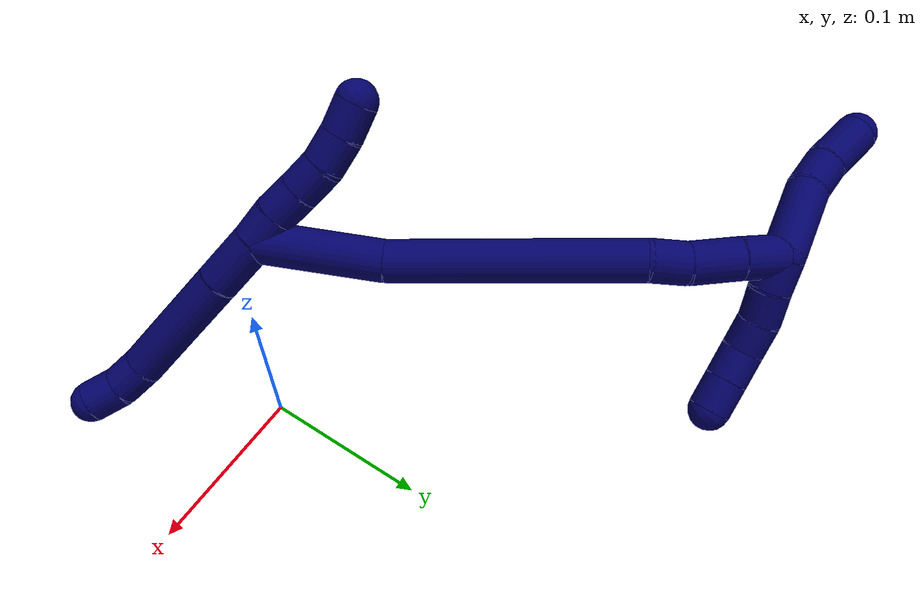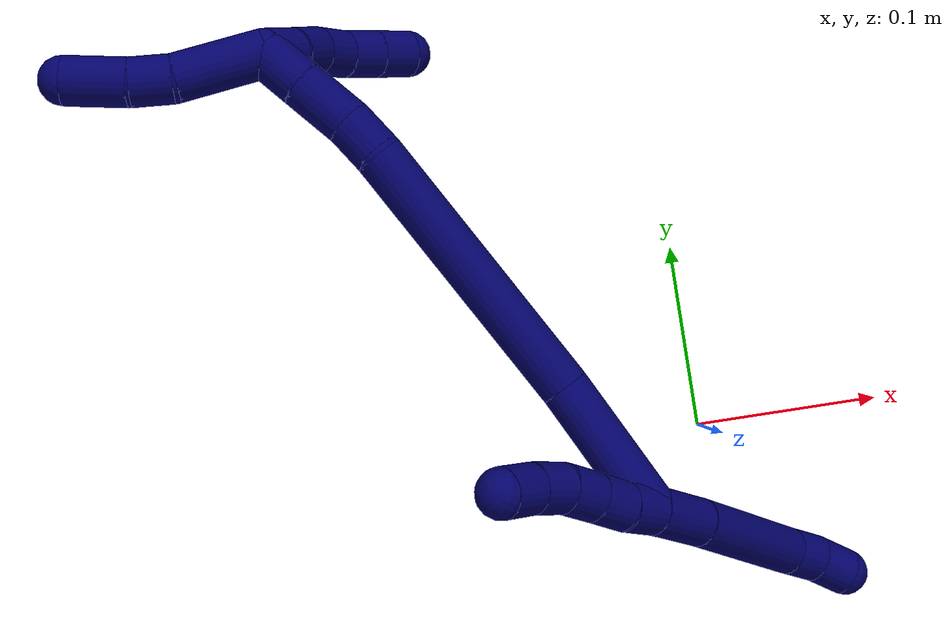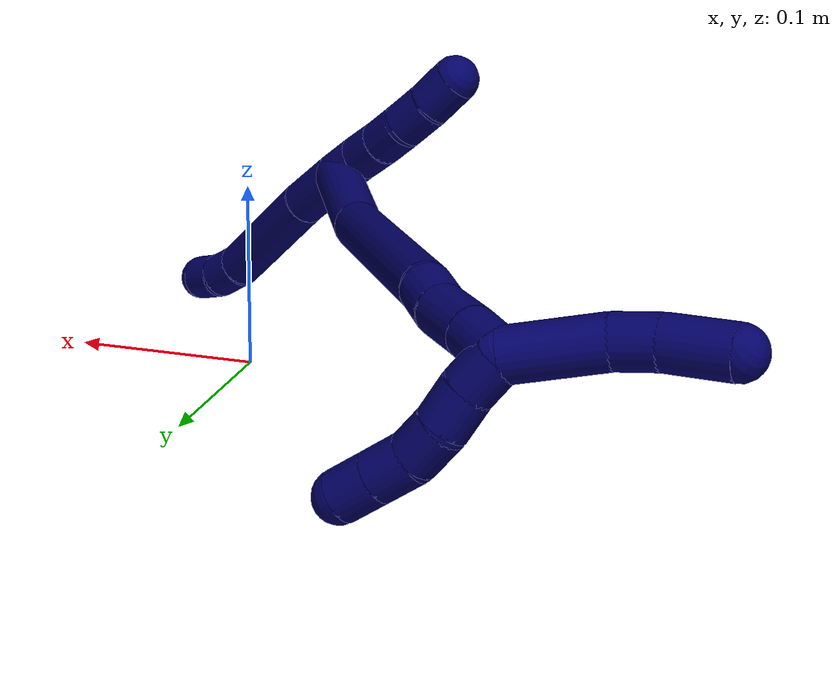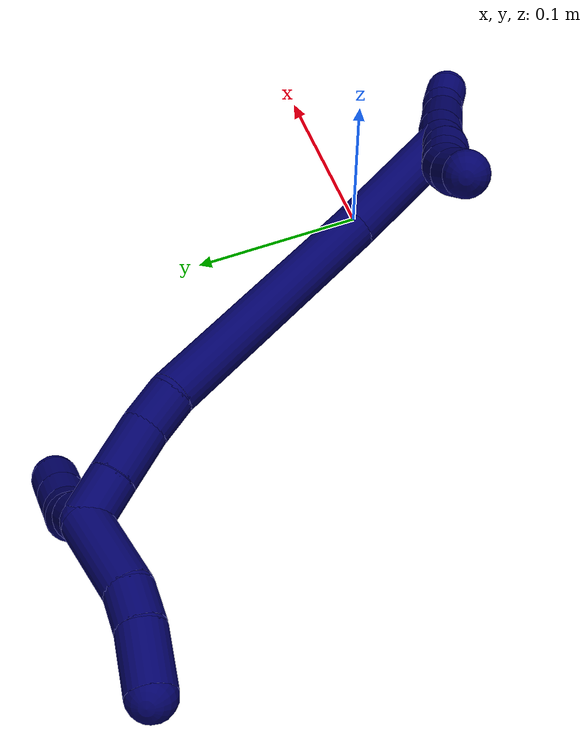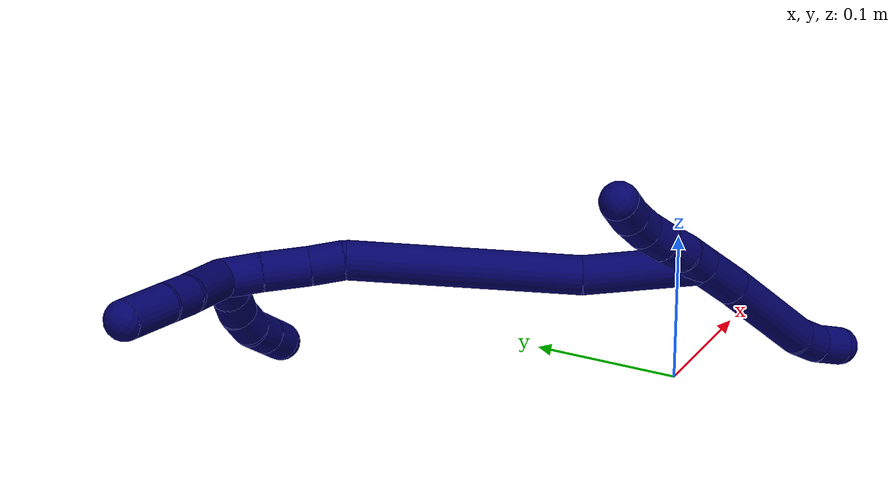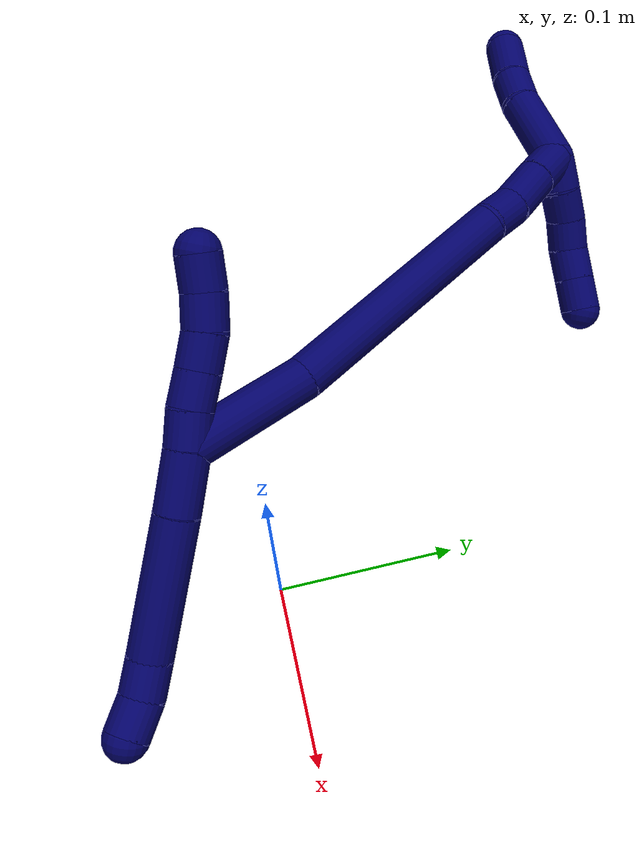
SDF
<sdf version="1.7">
 <world name="default">
  <model name="photoneo_s_sensor">
   <static>1</static>
   <pose>0 0 2 1.57079 1.57079 3.14159</pose>
   <link name="link">
    <inertial><mass>0.1</mass></inertial>
    <sensor name="sensor" type="depth">
     <update_rate>30</update_rate>
     <camera>
      <horizontal_fov>1.22</horizontal_fov>
      <image><width>1920</width><height>1200</height><format>B8G8R8</format></image>
      <clip><near>0.1</near><far>4</far></clip>
      <depth_camera><output>points</output></depth_camera>
     </camera>
     <plugin name="camera_plugin" filename="libgazebo_ros_depth_camera.so">
      <baseline>0.2</baseline>
      <alwaysOn>1</alwaysOn>
      <updateRate>0.0</updateRate>
      <cameraName>camera_ir</cameraName>
      <imageTopicName>/camera/color/image_raw</imageTopicName>
      <cameraInfoTopicName>/camera/color/camera_info</cameraInfoTopicName>
      <depthImageTopicName>/camera/depth/image_raw</depthImageTopicName>
      <depthImageCameraInfoTopicName>/camera/depth/camera_info</depthImageCameraInfoTopicName>
      <pointCloudTopicName>/camera/depth/points</pointCloudTopicName>
      <frameName>fr_optical</frameName>
      <pointCloudCutoff>0.1</pointCloudCutoff>
      <pointCloudCutoffMax>2.0</pointCloudCutoffMax>
      <distortionK1>0</distortionK1>
      <distortionK2>0</distortionK2>
      <distortionK3>0</distortionK3>
      <distortionT1>0</distortionT1>
      <distortionT2>0</distortionT2>
      <CxPrime>0</CxPrime>
      <Cx>0</Cx>
      <Cy>0</Cy>
      <focalLength>0</focalLength>
      <hackBaseline>0</hackBaseline>
     </plugin>
    </sensor>
   </link>
  </model>
  <model name="bin">
   <static>1</static>
   <link name="bottom">
    <collision name="collision-bottom">
     <pose>0 0 -0.01 0 -0 0</pose>
     <geometry><box><size>0.8 0.6 0.02</size></box></geometry>
     <surface>
      <friction><ode><mu>100</mu><mu2>100</mu2></ode></friction>
      <contact><collide_bitmask>65535</collide_bitmask></contact>
     </surface>
    </collision>
   </link>
   <link name="west_wall">
    <collision name="collision-west_wall">
     <pose>-0.41 0 0.1 0 -0 0</pose>
     <geometry><box><size>0.02 0.6 0.2</size></box></geometry>
     <surface>
      <friction><ode><mu>100</mu><mu2>100</mu2></ode></friction>
      <contact><collide_bitmask>65535</collide_bitmask></contact>
     </surface>
    </collision>
   </link>
   <link name="east_wall">
    <collision name="collision-east_wall">
     <pose>0.41 0 0.1 0 -0 0</pose>
     <geometry><box><size>0.02 0.6 0.2</size></box></geometry>
     <surface>
      <friction><ode><mu>100</mu><mu2>100</mu2></ode></friction>
      <contact><collide_bitmask>65535</collide_bitmask></contact>
     </surface>
    </collision>
   </link>
   <link name="south_wall">
    <collision name="collision-south_wall">
     <pose>0 -0.31 0.1 0 -0 0</pose>
     <geometry><box><size>0.8 0.02 0.2</size></box></geometry>
     <surface>
      <friction><ode><mu>100</mu><mu2>100</mu2></ode></friction>
      <contact><collide_bitmask>65535</collide_bitmask></contact>
     </surface>
    </collision>
   </link>
   <link name="north_wall">
    <collision name="collision-north_wall">
     <pose>0 0.31 0.1 0 -0 0</pose>
     <geometry><box><size>0.8 0.02 0.2</size></box></geometry>
     <surface>
      <friction><ode><mu>100</mu><mu2>100</mu2></ode></friction>
      <contact><collide_bitmask>65535</collide_bitmask></contact>
     </surface>
    </collision>
   </link>
  </model>
  <model name="7">
   <static>0</static>
   <link name="7">
    <collision name="collision-cylinder-e_1_2_8">
     <pose>0.000675 9.1e-05 -0.016753 -3.13616 0.040299 -2.8737</pose>
     <geometry><cylinder><radius>0.0125</radius><length>0.033533</length></cylinder></geometry>
     <surface>
      <friction><ode><mu>1.16</mu><mu2>1.16</mu2><slip1>0</slip1><slip2>0</slip2></ode></friction>
      <contact><ode><kp>1e+06</kp><kd>1</kd><max_vel>0</max_vel><min_depth>0.001</min_depth></ode></contact>
     </surface>
    </collision>
    <visual name="visual-cylinder-e_1_2_8">
     <pose>0.000675 9.1e-05 -0.016753 -3.13616 0.040299 -2.8737</pose>
     <geometry><cylinder><radius>0.0125</radius><length>0.033533</length></cylinder></geometry>
     <material><ambient>0.003922 0 0.403922 1</ambient></material>
    </visual>
    <collision name="collision-cylinder-e_2_8_9">
     <pose>0.000749 -0.00023 -0.071575 3.13077 -0.015812 -1.94121</pose>
     <geometry><cylinder><radius>0.0125</radius><length>0.076154</length></cylinder></geometry>
     <surface>
      <friction><ode><mu>1.16</mu><mu2>1.16</mu2><slip1>0</slip1><slip2>0</slip2></ode></friction>
      <contact><ode><kp>1e+06</kp><kd>1</kd><max_vel>0</max_vel><min_depth>0.001</min_depth></ode></contact>
     </surface>
    </collision>
    <visual name="visual-cylinder-e_2_8_9">
     <pose>0.000749 -0.00023 -0.071575 3.13077 -0.015812 -1.94121</pose>
     <geometry><cylinder><radius>0.0125</radius><length>0.076154</length></cylinder></geometry>
     <material><ambient>0.003922 0 0.403922 1</ambient></material>
    </visual>
    <collision name="collision-cylinder-e_3_9_10">
     <pose>0.001812 -0.001248 -0.119601 3.08086 0.165381 2.43898</pose>
     <geometry><cylinder><radius>0.0125</radius><length>0.020226</length></cylinder></geometry>
     <surface>
      <friction><ode><mu>1.16</mu><mu2>1.16</mu2><slip1>0</slip1><slip2>0</slip2></ode></friction>
      <contact><ode><kp>1e+06</kp><kd>1</kd><max_vel>0</max_vel><min_depth>0.001</min_depth></ode></contact>
     </surface>
    </collision>
    <visual name="visual-cylinder-e_3_9_10">
     <pose>0.001812 -0.001248 -0.119601 3.08086 0.165381 2.43898</pose>
     <geometry><cylinder><radius>0.0125</radius><length>0.020226</length></cylinder></geometry>
     <material><ambient>0.003922 0 0.403922 1</ambient></material>
    </visual>
    <collision name="collision-cylinder-e_4_10_6">
     <pose>0.006464 -0.004485 -0.138779 2.86354 0.302042 1.65463</pose>
     <geometry><cylinder><radius>0.0125</radius><length>0.020088</length></cylinder></geometry>
     <surface>
      <friction><ode><mu>1.16</mu><mu2>1.16</mu2><slip1>0</slip1><slip2>0</slip2></ode></friction>
      <contact><ode><kp>1e+06</kp><kd>1</kd><max_vel>0</max_vel><min_depth>0.001</min_depth></ode></contact>
     </surface>
    </collision>
    <visual name="visual-cylinder-e_4_10_6">
     <pose>0.006464 -0.004485 -0.138779 2.86354 0.302042 1.65463</pose>
     <geometry><cylinder><radius>0.0125</radius><length>0.020088</length></cylinder></geometry>
     <material><ambient>0.003922 0 0.403922 1</ambient></material>
    </visual>
    <collision name="collision-cylinder-e_1_2_11">
     <pose>-0.000868 -0.000861 0.009925 0.086524 -0.086861 -0.003762</pose>
     <geometry><cylinder><radius>0.0125</radius><length>0.02</length></cylinder></geometry>
     <surface>
      <friction><ode><mu>1.16</mu><mu2>1.16</mu2><slip1>0</slip1><slip2>0</slip2></ode></friction>
      <contact><ode><kp>1e+06</kp><kd>1</kd><max_vel>0</max_vel><min_depth>0.001</min_depth></ode></contact>
     </surface>
    </collision>
    <visual name="visual-cylinder-e_1_2_11">
     <pose>-0.000868 -0.000861 0.009925 0.086524 -0.086861 -0.003762</pose>
     <geometry><cylinder><radius>0.0125</radius><length>0.02</length></cylinder></geometry>
     <material><ambient>0.003922 0 0.403922 1</ambient></material>
    </visual>
    <collision name="collision-cylinder-e_2_11_12">
     <pose>-0.002655 -0.0012 0.029794 -0.052426 -0.092094 0.002416</pose>
     <geometry><cylinder><radius>0.0125</radius><length>0.02</length></cylinder></geometry>
     <surface>
      <friction><ode><mu>1.16</mu><mu2>1.16</mu2><slip1>0</slip1><slip2>0</slip2></ode></friction>
      <contact><ode><kp>1e+06</kp><kd>1</kd><max_vel>0</max_vel><min_depth>0.001</min_depth></ode></contact>
     </surface>
    </collision>
    <visual name="visual-cylinder-e_2_11_12">
     <pose>-0.002655 -0.0012 0.029794 -0.052426 -0.092094 0.002416</pose>
     <geometry><cylinder><radius>0.0125</radius><length>0.02</length></cylinder></geometry>
     <material><ambient>0.003922 0 0.403922 1</ambient></material>
    </visual>
    <collision name="collision-cylinder-e_3_12_13">
     <pose>-0.004145 -0.000467 0.049719 -0.021122 -0.057075 0.000603</pose>
     <geometry><cylinder><radius>0.0125</radius><length>0.02</length></cylinder></geometry>
     <surface>
      <friction><ode><mu>1.16</mu><mu2>1.16</mu2><slip1>0</slip1><slip2>0</slip2></ode></friction>
      <contact><ode><kp>1e+06</kp><kd>1</kd><max_vel>0</max_vel><min_depth>0.001</min_depth></ode></contact>
     </surface>
    </collision>
    <visual name="visual-cylinder-e_3_12_13">
     <pose>-0.004145 -0.000467 0.049719 -0.021122 -0.057075 0.000603</pose>
     <geometry><cylinder><radius>0.0125</radius><length>0.02</length></cylinder></geometry>
     <material><ambient>0.003922 0 0.403922 1</ambient></material>
    </visual>
    <collision name="collision-cylinder-e_4_13_14">
     <pose>-0.005415 -0.002218 0.069482 0.19791 -0.070039 -0.006956</pose>
     <geometry><cylinder><radius>0.0125</radius><length>0.02</length></cylinder></geometry>
     <surface>
      <friction><ode><mu>1.16</mu><mu2>1.16</mu2><slip1>0</slip1><slip2>0</slip2></ode></friction>
      <contact><ode><kp>1e+06</kp><kd>1</kd><max_vel>0</max_vel><min_depth>0.001</min_depth></ode></contact>
     </surface>
    </collision>
    <visual name="visual-cylinder-e_4_13_14">
     <pose>-0.005415 -0.002218 0.069482 0.19791 -0.070039 -0.006956</pose>
     <geometry><cylinder><radius>0.0125</radius><length>0.02</length></cylinder></geometry>
     <material><ambient>0.003922 0 0.403922 1</ambient></material>
    </visual>
    <collision name="collision-cylinder-e_5_14_5">
     <pose>-0.006278 -0.007261 0.088775 0.313264 -0.016286 -0.002572</pose>
     <geometry><cylinder><radius>0.0125</radius><length>0.02</length></cylinder></geometry>
     <surface>
      <friction><ode><mu>1.16</mu><mu2>1.16</mu2><slip1>0</slip1><slip2>0</slip2></ode></friction>
      <contact><ode><kp>1e+06</kp><kd>1</kd><max_vel>0</max_vel><min_depth>0.001</min_depth></ode></contact>
     </surface>
    </collision>
    <visual name="visual-cylinder-e_5_14_5">
     <pose>-0.006278 -0.007261 0.088775 0.313264 -0.016286 -0.002572</pose>
     <geometry><cylinder><radius>0.0125</radius><length>0.02</length></cylinder></geometry>
     <material><ambient>0.003922 0 0.403922 1</ambient></material>
    </visual>
    <collision name="collision-cylinder-e_1_2_15">
     <pose>-0.009971 0.029283 0.021053 -0.947461 -0.269742 0.138909</pose>
     <geometry><cylinder><radius>0.0125</radius><length>0.074838</length></cylinder></geometry>
     <surface>
      <friction><ode><mu>1.16</mu><mu2>1.16</mu2><slip1>0</slip1><slip2>0</slip2></ode></friction>
      <contact><ode><kp>1e+06</kp><kd>1</kd><max_vel>0</max_vel><min_depth>0.001</min_depth></ode></contact>
     </surface>
    </collision>
    <visual name="visual-cylinder-e_1_2_15">
     <pose>-0.009971 0.029283 0.021053 -0.947461 -0.269742 0.138909</pose>
     <geometry><cylinder><radius>0.0125</radius><length>0.074838</length></cylinder></geometry>
     <material><ambient>0.003922 0 0.403922 1</ambient></material>
    </visual>
    <collision name="collision-cylinder-e_2_15_16">
     <pose>-0.03314 0.109228 0.094025 -0.773147 -0.179957 0.073418</pose>
     <geometry><cylinder><radius>0.0125</radius><length>0.147464</length></cylinder></geometry>
     <surface>
      <friction><ode><mu>1.16</mu><mu2>1.16</mu2><slip1>0</slip1><slip2>0</slip2></ode></friction>
      <contact><ode><kp>1e+06</kp><kd>1</kd><max_vel>0</max_vel><min_depth>0.001</min_depth></ode></contact>
     </surface>
    </collision>
    <visual name="visual-cylinder-e_2_15_16">
     <pose>-0.03314 0.109228 0.094025 -0.773147 -0.179957 0.073418</pose>
     <geometry><cylinder><radius>0.0125</radius><length>0.147464</length></cylinder></geometry>
     <material><ambient>0.003922 0 0.403922 1</ambient></material>
    </visual>
    <collision name="collision-cylinder-e_3_16_17">
     <pose>-0.050549 0.167932 0.152426 -0.892442 -0.387248 0.187064</pose>
     <geometry><cylinder><radius>0.0125</radius><length>0.022309</length></cylinder></geometry>
     <surface>
      <friction><ode><mu>1.16</mu><mu2>1.16</mu2><slip1>0</slip1><slip2>0</slip2></ode></friction>
      <contact><ode><kp>1e+06</kp><kd>1</kd><max_vel>0</max_vel><min_depth>0.001</min_depth></ode></contact>
     </surface>
    </collision>
    <visual name="visual-cylinder-e_3_16_17">
     <pose>-0.050549 0.167932 0.152426 -0.892442 -0.387248 0.187064</pose>
     <geometry><cylinder><radius>0.0125</radius><length>0.022309</length></cylinder></geometry>
     <material><ambient>0.003922 0 0.403922 1</ambient></material>
    </visual>
    <collision name="collision-cylinder-e_4_17_18">
     <pose>-0.060767 0.18508 0.169511 -0.709521 -0.405794 0.152123</pose>
     <geometry><cylinder><radius>0.0125</radius><length>0.030425</length></cylinder></geometry>
     <surface>
      <friction><ode><mu>1.16</mu><mu2>1.16</mu2><slip1>0</slip1><slip2>0</slip2></ode></friction>
      <contact><ode><kp>1e+06</kp><kd>1</kd><max_vel>0</max_vel><min_depth>0.001</min_depth></ode></contact>
     </surface>
    </collision>
    <visual name="visual-cylinder-e_4_17_18">
     <pose>-0.060767 0.18508 0.169511 -0.709521 -0.405794 0.152123</pose>
     <geometry><cylinder><radius>0.0125</radius><length>0.030425</length></cylinder></geometry>
     <material><ambient>0.003922 0 0.403922 1</ambient></material>
    </visual>
    <collision name="collision-cylinder-e_5_18_1">
     <pose>-0.072068 0.201924 0.188354 -0.75408 -0.438146 0.175874</pose>
     <geometry><cylinder><radius>0.0125</radius><length>0.024965</length></cylinder></geometry>
     <surface>
      <friction><ode><mu>1.16</mu><mu2>1.16</mu2><slip1>0</slip1><slip2>0</slip2></ode></friction>
      <contact><ode><kp>1e+06</kp><kd>1</kd><max_vel>0</max_vel><min_depth>0.001</min_depth></ode></contact>
     </surface>
    </collision>
    <visual name="visual-cylinder-e_5_18_1">
     <pose>-0.072068 0.201924 0.188354 -0.75408 -0.438146 0.175874</pose>
     <geometry><cylinder><radius>0.0125</radius><length>0.024965</length></cylinder></geometry>
     <material><ambient>0.003922 0 0.403922 1</ambient></material>
    </visual>
    <collision name="collision-cylinder-e_1_1_19">
     <pose>-0.077961 0.214169 0.187686 -2.67313 -0.059793 0.249362</pose>
     <geometry><cylinder><radius>0.0125</radius><length>0.02</length></cylinder></geometry>
     <surface>
      <friction><ode><mu>1.16</mu><mu2>1.16</mu2><slip1>0</slip1><slip2>0</slip2></ode></friction>
      <contact><ode><kp>1e+06</kp><kd>1</kd><max_vel>0</max_vel><min_depth>0.001</min_depth></ode></contact>
     </surface>
    </collision>
    <visual name="visual-cylinder-e_1_1_19">
     <pose>-0.077961 0.214169 0.187686 -2.67313 -0.059793 0.249362</pose>
     <geometry><cylinder><radius>0.0125</radius><length>0.02</length></cylinder></geometry>
     <material><ambient>0.003922 0 0.403922 1</ambient></material>
    </visual>
    <collision name="collision-cylinder-e_2_19_20">
     <pose>-0.080405 0.223624 0.170287 -2.61408 -0.185666 0.663995</pose>
     <geometry><cylinder><radius>0.0125</radius><length>0.02</length></cylinder></geometry>
     <surface>
      <friction><ode><mu>1.16</mu><mu2>1.16</mu2><slip1>0</slip1><slip2>0</slip2></ode></friction>
      <contact><ode><kp>1e+06</kp><kd>1</kd><max_vel>0</max_vel><min_depth>0.001</min_depth></ode></contact>
     </surface>
    </collision>
    <visual name="visual-cylinder-e_2_19_20">
     <pose>-0.080405 0.223624 0.170287 -2.61408 -0.185666 0.663995</pose>
     <geometry><cylinder><radius>0.0125</radius><length>0.02</length></cylinder></geometry>
     <material><ambient>0.003922 0 0.403922 1</ambient></material>
    </visual>
    <collision name="collision-cylinder-e_3_20_21">
     <pose>-0.082942 0.231965 0.152414 -2.79446 -0.069212 0.389894</pose>
     <geometry><cylinder><radius>0.0125</radius><length>0.02</length></cylinder></geometry>
     <surface>
      <friction><ode><mu>1.16</mu><mu2>1.16</mu2><slip1>0</slip1><slip2>0</slip2></ode></friction>
      <contact><ode><kp>1e+06</kp><kd>1</kd><max_vel>0</max_vel><min_depth>0.001</min_depth></ode></contact>
     </surface>
    </collision>
    <visual name="visual-cylinder-e_3_20_21">
     <pose>-0.082942 0.231965 0.152414 -2.79446 -0.069212 0.389894</pose>
     <geometry><cylinder><radius>0.0125</radius><length>0.02</length></cylinder></geometry>
     <material><ambient>0.003922 0 0.403922 1</ambient></material>
    </visual>
    <collision name="collision-cylinder-e_4_21_22">
     <pose>-0.081572 0.238565 0.133788 -2.8078 0.207705 -1.10811</pose>
     <geometry><cylinder><radius>0.0125</radius><length>0.02</length></cylinder></geometry>
     <surface>
      <friction><ode><mu>1.16</mu><mu2>1.16</mu2><slip1>0</slip1><slip2>0</slip2></ode></friction>
      <contact><ode><kp>1e+06</kp><kd>1</kd><max_vel>0</max_vel><min_depth>0.001</min_depth></ode></contact>
     </surface>
    </collision>
    <visual name="visual-cylinder-e_4_21_22">
     <pose>-0.081572 0.238565 0.133788 -2.8078 0.207705 -1.10811</pose>
     <geometry><cylinder><radius>0.0125</radius><length>0.02</length></cylinder></geometry>
     <material><ambient>0.003922 0 0.403922 1</ambient></material>
    </visual>
    <collision name="collision-cylinder-e_5_22_4">
     <pose>-0.077445 0.244926 0.115282 -2.8132 0.207989 -1.12426</pose>
     <geometry><cylinder><radius>0.0125</radius><length>0.02</length></cylinder></geometry>
     <surface>
      <friction><ode><mu>1.16</mu><mu2>1.16</mu2><slip1>0</slip1><slip2>0</slip2></ode></friction>
      <contact><ode><kp>1e+06</kp><kd>1</kd><max_vel>0</max_vel><min_depth>0.001</min_depth></ode></contact>
     </surface>
    </collision>
    <visual name="visual-cylinder-e_5_22_4">
     <pose>-0.077445 0.244926 0.115282 -2.8132 0.207989 -1.12426</pose>
     <geometry><cylinder><radius>0.0125</radius><length>0.02</length></cylinder></geometry>
     <material><ambient>0.003922 0 0.403922 1</ambient></material>
    </visual>
    <collision name="collision-cylinder-e_1_1_23">
     <pose>-0.091308 0.201212 0.213225 0.470097 -0.641859 -0.158878</pose>
     <geometry><cylinder><radius>0.0125</radius><length>0.046583</length></cylinder></geometry>
     <surface>
      <friction><ode><mu>1.16</mu><mu2>1.16</mu2><slip1>0</slip1><slip2>0</slip2></ode></friction>
      <contact><ode><kp>1e+06</kp><kd>1</kd><max_vel>0</max_vel><min_depth>0.001</min_depth></ode></contact>
     </surface>
    </collision>
    <visual name="visual-cylinder-e_1_1_23">
     <pose>-0.091308 0.201212 0.213225 0.470097 -0.641859 -0.158878</pose>
     <geometry><cylinder><radius>0.0125</radius><length>0.046583</length></cylinder></geometry>
     <material><ambient>0.003922 0 0.403922 1</ambient></material>
    </visual>
    <collision name="collision-cylinder-e_2_23_24">
     <pose>-0.112035 0.191176 0.237932 0.193857 -0.689415 -0.069793</pose>
     <geometry><cylinder><radius>0.0125</radius><length>0.021327</length></cylinder></geometry>
     <surface>
      <friction><ode><mu>1.16</mu><mu2>1.16</mu2><slip1>0</slip1><slip2>0</slip2></ode></friction>
      <contact><ode><kp>1e+06</kp><kd>1</kd><max_vel>0</max_vel><min_depth>0.001</min_depth></ode></contact>
     </surface>
    </collision>
    <visual name="visual-cylinder-e_2_23_24">
     <pose>-0.112035 0.191176 0.237932 0.193857 -0.689415 -0.069793</pose>
     <geometry><cylinder><radius>0.0125</radius><length>0.021327</length></cylinder></geometry>
     <material><ambient>0.003922 0 0.403922 1</ambient></material>
    </visual>
    <collision name="collision-cylinder-e_3_24_3">
     <pose>-0.129527 0.189574 0.257954 0.00138 -0.730756 -0.000528</pose>
     <geometry><cylinder><radius>0.0125</radius><length>0.03209</length></cylinder></geometry>
     <surface>
      <friction><ode><mu>1.16</mu><mu2>1.16</mu2><slip1>0</slip1><slip2>0</slip2></ode></friction>
      <contact><ode><kp>1e+06</kp><kd>1</kd><max_vel>0</max_vel><min_depth>0.001</min_depth></ode></contact>
     </surface>
    </collision>
    <visual name="visual-cylinder-e_3_24_3">
     <pose>-0.129527 0.189574 0.257954 0.00138 -0.730756 -0.000528</pose>
     <geometry><cylinder><radius>0.0125</radius><length>0.03209</length></cylinder></geometry>
     <material><ambient>0.003922 0 0.403922 1</ambient></material>
    </visual>
    <collision name="collision-sphere-3">
     <pose>-0.140236 0.189558 0.269902 0 -0 0</pose>
     <geometry><sphere><radius>0.0125</radius></sphere></geometry>
     <surface>
      <friction><ode><mu>1.16</mu><mu2>1.16</mu2><slip1>0</slip1><slip2>0</slip2></ode></friction>
      <contact><ode><kp>1e+06</kp><kd>1</kd><max_vel>0</max_vel><min_depth>0.001</min_depth></ode></contact>
     </surface>
    </collision>
    <visual name="visual-sphere-3">
     <pose>-0.140236 0.189558 0.269902 0 -0 0</pose>
     <geometry><sphere><radius>0.0125</radius></sphere></geometry>
     <material><ambient>0.003922 0 0.403922 1</ambient></material>
    </visual>
    <collision name="collision-sphere-24">
     <pose>-0.118818 0.189591 0.246006 0 -0 0</pose>
     <geometry><sphere><radius>0.0125</radius></sphere></geometry>
     <surface>
      <friction><ode><mu>1.16</mu><mu2>1.16</mu2><slip1>0</slip1><slip2>0</slip2></ode></friction>
      <contact><ode><kp>1e+06</kp><kd>1</kd><max_vel>0</max_vel><min_depth>0.001</min_depth></ode></contact>
     </surface>
    </collision>
    <visual name="visual-sphere-24">
     <pose>-0.118818 0.189591 0.246006 0 -0 0</pose>
     <geometry><sphere><radius>0.0125</radius></sphere></geometry>
     <material><ambient>0.003922 0 0.403922 1</ambient></material>
    </visual>
    <collision name="collision-sphere-23">
     <pose>-0.105252 0.192761 0.229858 0 -0 0</pose>
     <geometry><sphere><radius>0.0125</radius></sphere></geometry>
     <surface>
      <friction><ode><mu>1.16</mu><mu2>1.16</mu2><slip1>0</slip1><slip2>0</slip2></ode></friction>
      <contact><ode><kp>1e+06</kp><kd>1</kd><max_vel>0</max_vel><min_depth>0.001</min_depth></ode></contact>
     </surface>
    </collision>
    <visual name="visual-sphere-23">
     <pose>-0.105252 0.192761 0.229858 0 -0 0</pose>
     <geometry><sphere><radius>0.0125</radius></sphere></geometry>
     <material><ambient>0.003922 0 0.403922 1</ambient></material>
    </visual>
    <collision name="collision-sphere-4">
     <pose>-0.07538 0.248082 0.10602 0 -0 0</pose>
     <geometry><sphere><radius>0.0125</radius></sphere></geometry>
     <surface>
      <friction><ode><mu>1.16</mu><mu2>1.16</mu2><slip1>0</slip1><slip2>0</slip2></ode></friction>
      <contact><ode><kp>1e+06</kp><kd>1</kd><max_vel>0</max_vel><min_depth>0.001</min_depth></ode></contact>
     </surface>
    </collision>
    <visual name="visual-sphere-4">
     <pose>-0.07538 0.248082 0.10602 0 -0 0</pose>
     <geometry><sphere><radius>0.0125</radius></sphere></geometry>
     <material><ambient>0.003922 0 0.403922 1</ambient></material>
    </visual>
    <collision name="collision-sphere-22">
     <pose>-0.07951 0.241771 0.124543 0 -0 0</pose>
     <geometry><sphere><radius>0.0125</radius></sphere></geometry>
     <surface>
      <friction><ode><mu>1.16</mu><mu2>1.16</mu2><slip1>0</slip1><slip2>0</slip2></ode></friction>
      <contact><ode><kp>1e+06</kp><kd>1</kd><max_vel>0</max_vel><min_depth>0.001</min_depth></ode></contact>
     </surface>
    </collision>
    <visual name="visual-sphere-22">
     <pose>-0.07951 0.241771 0.124543 0 -0 0</pose>
     <geometry><sphere><radius>0.0125</radius></sphere></geometry>
     <material><ambient>0.003922 0 0.403922 1</ambient></material>
    </visual>
    <collision name="collision-sphere-21">
     <pose>-0.083634 0.235359 0.143033 0 -0 0</pose>
     <geometry><sphere><radius>0.0125</radius></sphere></geometry>
     <surface>
      <friction><ode><mu>1.16</mu><mu2>1.16</mu2><slip1>0</slip1><slip2>0</slip2></ode></friction>
      <contact><ode><kp>1e+06</kp><kd>1</kd><max_vel>0</max_vel><min_depth>0.001</min_depth></ode></contact>
     </surface>
    </collision>
    <visual name="visual-sphere-21">
     <pose>-0.083634 0.235359 0.143033 0 -0 0</pose>
     <geometry><sphere><radius>0.0125</radius></sphere></geometry>
     <material><ambient>0.003922 0 0.403922 1</ambient></material>
    </visual>
    <collision name="collision-sphere-20">
     <pose>-0.082251 0.228571 0.161795 0 -0 0</pose>
     <geometry><sphere><radius>0.0125</radius></sphere></geometry>
     <surface>
      <friction><ode><mu>1.16</mu><mu2>1.16</mu2><slip1>0</slip1><slip2>0</slip2></ode></friction>
      <contact><ode><kp>1e+06</kp><kd>1</kd><max_vel>0</max_vel><min_depth>0.001</min_depth></ode></contact>
     </surface>
    </collision>
    <visual name="visual-sphere-20">
     <pose>-0.082251 0.228571 0.161795 0 -0 0</pose>
     <geometry><sphere><radius>0.0125</radius></sphere></geometry>
     <material><ambient>0.003922 0 0.403922 1</ambient></material>
    </visual>
    <collision name="collision-sphere-11">
     <pose>-0.001735 -0.001722 0.01985 0 -0 0</pose>
     <geometry><sphere><radius>0.0125</radius></sphere></geometry>
     <surface>
      <friction><ode><mu>1.16</mu><mu2>1.16</mu2><slip1>0</slip1><slip2>0</slip2></ode></friction>
      <contact><ode><kp>1e+06</kp><kd>1</kd><max_vel>0</max_vel><min_depth>0.001</min_depth></ode></contact>
     </surface>
    </collision>
    <visual name="visual-sphere-11">
     <pose>-0.001735 -0.001722 0.01985 0 -0 0</pose>
     <geometry><sphere><radius>0.0125</radius></sphere></geometry>
     <material><ambient>0.003922 0 0.403922 1</ambient></material>
    </visual>
    <collision name="collision-sphere-6">
     <pose>0.009452 -0.007117 -0.148 0 -0 0</pose>
     <geometry><sphere><radius>0.0125</radius></sphere></geometry>
     <surface>
      <friction><ode><mu>1.16</mu><mu2>1.16</mu2><slip1>0</slip1><slip2>0</slip2></ode></friction>
      <contact><ode><kp>1e+06</kp><kd>1</kd><max_vel>0</max_vel><min_depth>0.001</min_depth></ode></contact>
     </surface>
    </collision>
    <visual name="visual-sphere-6">
     <pose>0.009452 -0.007117 -0.148 0 -0 0</pose>
     <geometry><sphere><radius>0.0125</radius></sphere></geometry>
     <material><ambient>0.003922 0 0.403922 1</ambient></material>
    </visual>
    <collision name="collision-sphere-10">
     <pose>0.003477 -0.001853 -0.129558 0 -0 0</pose>
     <geometry><sphere><radius>0.0125</radius></sphere></geometry>
     <surface>
      <friction><ode><mu>1.16</mu><mu2>1.16</mu2><slip1>0</slip1><slip2>0</slip2></ode></friction>
      <contact><ode><kp>1e+06</kp><kd>1</kd><max_vel>0</max_vel><min_depth>0.001</min_depth></ode></contact>
     </surface>
    </collision>
    <visual name="visual-sphere-10">
     <pose>0.003477 -0.001853 -0.129558 0 -0 0</pose>
     <geometry><sphere><radius>0.0125</radius></sphere></geometry>
     <material><ambient>0.003922 0 0.403922 1</ambient></material>
    </visual>
    <collision name="collision-sphere-9">
     <pose>0.000147 -0.000642 -0.109645 0 -0 0</pose>
     <geometry><sphere><radius>0.0125</radius></sphere></geometry>
     <surface>
      <friction><ode><mu>1.16</mu><mu2>1.16</mu2><slip1>0</slip1><slip2>0</slip2></ode></friction>
      <contact><ode><kp>1e+06</kp><kd>1</kd><max_vel>0</max_vel><min_depth>0.001</min_depth></ode></contact>
     </surface>
    </collision>
    <visual name="visual-sphere-9">
     <pose>0.000147 -0.000642 -0.109645 0 -0 0</pose>
     <geometry><sphere><radius>0.0125</radius></sphere></geometry>
     <material><ambient>0.003922 0 0.403922 1</ambient></material>
    </visual>
    <collision name="collision-sphere-2">
     <geometry><sphere><radius>0.0125</radius></sphere></geometry>
     <surface>
      <friction><ode><mu>1.16</mu><mu2>1.16</mu2><slip1>0</slip1><slip2>0</slip2></ode></friction>
      <contact><ode><kp>1e+06</kp><kd>1</kd><max_vel>0</max_vel><min_depth>0.001</min_depth></ode></contact>
     </surface>
    </collision>
    <visual name="visual-sphere-2">
     <geometry><sphere><radius>0.0125</radius></sphere></geometry>
     <material><ambient>0.003922 0 0.403922 1</ambient></material>
    </visual>
    <collision name="collision-sphere-19">
     <pose>-0.078559 0.218676 0.178779 0 -0 0</pose>
     <geometry><sphere><radius>0.0125</radius></sphere></geometry>
     <surface>
      <friction><ode><mu>1.16</mu><mu2>1.16</mu2><slip1>0</slip1><slip2>0</slip2></ode></friction>
      <contact><ode><kp>1e+06</kp><kd>1</kd><max_vel>0</max_vel><min_depth>0.001</min_depth></ode></contact>
     </surface>
    </collision>
    <visual name="visual-sphere-19">
     <pose>-0.078559 0.218676 0.178779 0 -0 0</pose>
     <geometry><sphere><radius>0.0125</radius></sphere></geometry>
     <material><ambient>0.003922 0 0.403922 1</ambient></material>
    </visual>
    <collision name="collision-sphere-8">
     <pose>0.001351 0.000182 -0.033505 0 -0 0</pose>
     <geometry><sphere><radius>0.0125</radius></sphere></geometry>
     <surface>
      <friction><ode><mu>1.16</mu><mu2>1.16</mu2><slip1>0</slip1><slip2>0</slip2></ode></friction>
      <contact><ode><kp>1e+06</kp><kd>1</kd><max_vel>0</max_vel><min_depth>0.001</min_depth></ode></contact>
     </surface>
    </collision>
    <visual name="visual-sphere-8">
     <pose>0.001351 0.000182 -0.033505 0 -0 0</pose>
     <geometry><sphere><radius>0.0125</radius></sphere></geometry>
     <material><ambient>0.003922 0 0.403922 1</ambient></material>
    </visual>
    <collision name="collision-sphere-12">
     <pose>-0.003574 -0.000678 0.039738 0 -0 0</pose>
     <geometry><sphere><radius>0.0125</radius></sphere></geometry>
     <surface>
      <friction><ode><mu>1.16</mu><mu2>1.16</mu2><slip1>0</slip1><slip2>0</slip2></ode></friction>
      <contact><ode><kp>1e+06</kp><kd>1</kd><max_vel>0</max_vel><min_depth>0.001</min_depth></ode></contact>
     </surface>
    </collision>
    <visual name="visual-sphere-12">
     <pose>-0.003574 -0.000678 0.039738 0 -0 0</pose>
     <geometry><sphere><radius>0.0125</radius></sphere></geometry>
     <material><ambient>0.003922 0 0.403922 1</ambient></material>
    </visual>
    <collision name="collision-sphere-13">
     <pose>-0.004715 -0.000256 0.059701 0 -0 0</pose>
     <geometry><sphere><radius>0.0125</radius></sphere></geometry>
     <surface>
      <friction><ode><mu>1.16</mu><mu2>1.16</mu2><slip1>0</slip1><slip2>0</slip2></ode></friction>
      <contact><ode><kp>1e+06</kp><kd>1</kd><max_vel>0</max_vel><min_depth>0.001</min_depth></ode></contact>
     </surface>
    </collision>
    <visual name="visual-sphere-13">
     <pose>-0.004715 -0.000256 0.059701 0 -0 0</pose>
     <geometry><sphere><radius>0.0125</radius></sphere></geometry>
     <material><ambient>0.003922 0 0.403922 1</ambient></material>
    </visual>
    <collision name="collision-sphere-14">
     <pose>-0.006115 -0.004179 0.079262 0 -0 0</pose>
     <geometry><sphere><radius>0.0125</radius></sphere></geometry>
     <surface>
      <friction><ode><mu>1.16</mu><mu2>1.16</mu2><slip1>0</slip1><slip2>0</slip2></ode></friction>
      <contact><ode><kp>1e+06</kp><kd>1</kd><max_vel>0</max_vel><min_depth>0.001</min_depth></ode></contact>
     </surface>
    </collision>
    <visual name="visual-sphere-14">
     <pose>-0.006115 -0.004179 0.079262 0 -0 0</pose>
     <geometry><sphere><radius>0.0125</radius></sphere></geometry>
     <material><ambient>0.003922 0 0.403922 1</ambient></material>
    </visual>
    <collision name="collision-sphere-5">
     <pose>-0.006441 -0.010342 0.098287 0 -0 0</pose>
     <geometry><sphere><radius>0.0125</radius></sphere></geometry>
     <surface>
      <friction><ode><mu>1.16</mu><mu2>1.16</mu2><slip1>0</slip1><slip2>0</slip2></ode></friction>
      <contact><ode><kp>1e+06</kp><kd>1</kd><max_vel>0</max_vel><min_depth>0.001</min_depth></ode></contact>
     </surface>
    </collision>
    <visual name="visual-sphere-5">
     <pose>-0.006441 -0.010342 0.098287 0 -0 0</pose>
     <geometry><sphere><radius>0.0125</radius></sphere></geometry>
     <material><ambient>0.003922 0 0.403922 1</ambient></material>
    </visual>
    <collision name="collision-sphere-15">
     <pose>-0.019943 0.058566 0.042107 0 -0 0</pose>
     <geometry><sphere><radius>0.0125</radius></sphere></geometry>
     <surface>
      <friction><ode><mu>1.16</mu><mu2>1.16</mu2><slip1>0</slip1><slip2>0</slip2></ode></friction>
      <contact><ode><kp>1e+06</kp><kd>1</kd><max_vel>0</max_vel><min_depth>0.001</min_depth></ode></contact>
     </surface>
    </collision>
    <visual name="visual-sphere-15">
     <pose>-0.019943 0.058566 0.042107 0 -0 0</pose>
     <geometry><sphere><radius>0.0125</radius></sphere></geometry>
     <material><ambient>0.003922 0 0.403922 1</ambient></material>
    </visual>
    <collision name="collision-sphere-16">
     <pose>-0.046337 0.159891 0.145944 0 -0 0</pose>
     <geometry><sphere><radius>0.0125</radius></sphere></geometry>
     <surface>
      <friction><ode><mu>1.16</mu><mu2>1.16</mu2><slip1>0</slip1><slip2>0</slip2></ode></friction>
      <contact><ode><kp>1e+06</kp><kd>1</kd><max_vel>0</max_vel><min_depth>0.001</min_depth></ode></contact>
     </surface>
    </collision>
    <visual name="visual-sphere-16">
     <pose>-0.046337 0.159891 0.145944 0 -0 0</pose>
     <geometry><sphere><radius>0.0125</radius></sphere></geometry>
     <material><ambient>0.003922 0 0.403922 1</ambient></material>
    </visual>
    <collision name="collision-sphere-17">
     <pose>-0.054762 0.175974 0.158907 0 -0 0</pose>
     <geometry><sphere><radius>0.0125</radius></sphere></geometry>
     <surface>
      <friction><ode><mu>1.16</mu><mu2>1.16</mu2><slip1>0</slip1><slip2>0</slip2></ode></friction>
      <contact><ode><kp>1e+06</kp><kd>1</kd><max_vel>0</max_vel><min_depth>0.001</min_depth></ode></contact>
     </surface>
    </collision>
    <visual name="visual-sphere-17">
     <pose>-0.054762 0.175974 0.158907 0 -0 0</pose>
     <geometry><sphere><radius>0.0125</radius></sphere></geometry>
     <material><ambient>0.003922 0 0.403922 1</ambient></material>
    </visual>
    <collision name="collision-sphere-18">
     <pose>-0.066772 0.194185 0.180115 0 -0 0</pose>
     <geometry><sphere><radius>0.0125</radius></sphere></geometry>
     <surface>
      <friction><ode><mu>1.16</mu><mu2>1.16</mu2><slip1>0</slip1><slip2>0</slip2></ode></friction>
      <contact><ode><kp>1e+06</kp><kd>1</kd><max_vel>0</max_vel><min_depth>0.001</min_depth></ode></contact>
     </surface>
    </collision>
    <visual name="visual-sphere-18">
     <pose>-0.066772 0.194185 0.180115 0 -0 0</pose>
     <geometry><sphere><radius>0.0125</radius></sphere></geometry>
     <material><ambient>0.003922 0 0.403922 1</ambient></material>
    </visual>
    <collision name="collision-sphere-1">
     <pose>-0.077364 0.209662 0.196593 0 -0 0</pose>
     <geometry><sphere><radius>0.0125</radius></sphere></geometry>
     <surface>
      <friction><ode><mu>1.16</mu><mu2>1.16</mu2><slip1>0</slip1><slip2>0</slip2></ode></friction>
      <contact><ode><kp>1e+06</kp><kd>1</kd><max_vel>0</max_vel><min_depth>0.001</min_depth></ode></contact>
     </surface>
    </collision>
    <visual name="visual-sphere-1">
     <pose>-0.077364 0.209662 0.196593 0 -0 0</pose>
     <geometry><sphere><radius>0.0125</radius></sphere></geometry>
     <material><ambient>0.003922 0 0.403922 1</ambient></material>
    </visual>
    <inertial>
     <pose>-0.039141 0.099928 0.081213 0 -0 0</pose>
     <mass>0.75</mass>
     <inertia>
      <ixx>0.000293</ixx>
      <ixy>0</ixy>
      <ixz>0</ixz>
      <iyy>0.000268</iyy>
      <iyz>0</iyz>
      <izz>-0.000137</izz>
     </inertia>
    </inertial>
   </link>
   <pose>-0.039811 -0.032399 0.101496 -0.500812 -0.740069 0.190579</pose>
  </model>
 </world>
</sdf>
